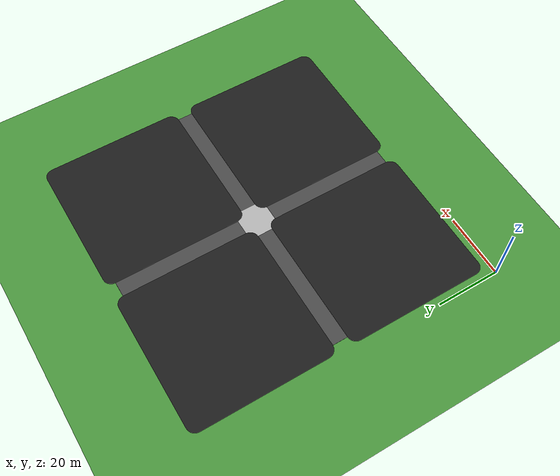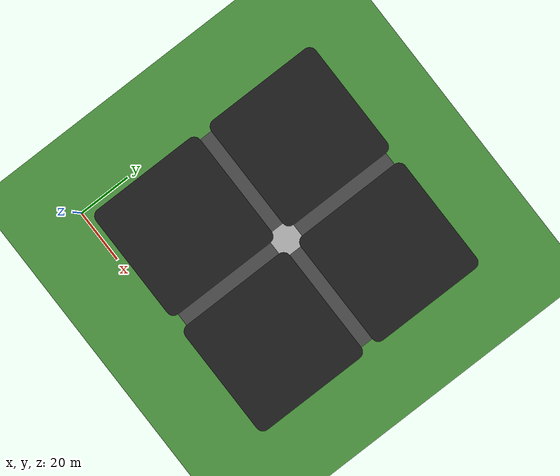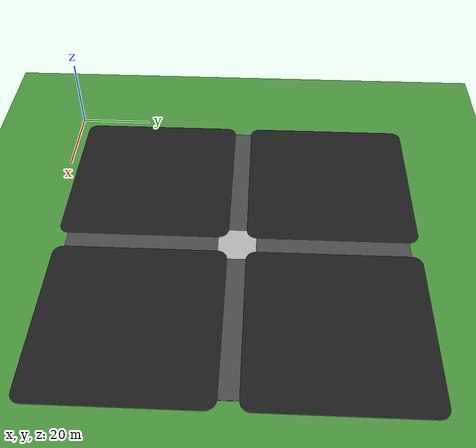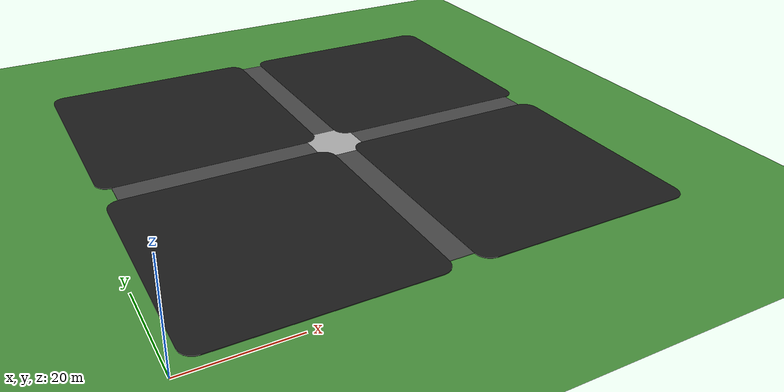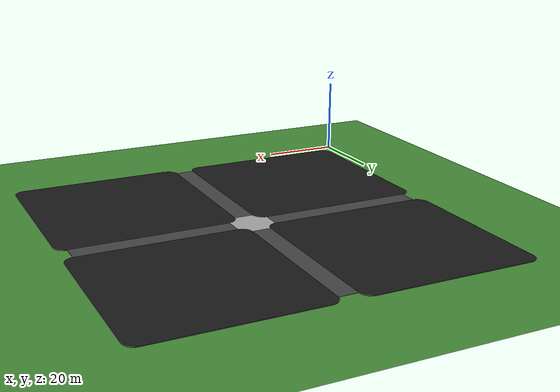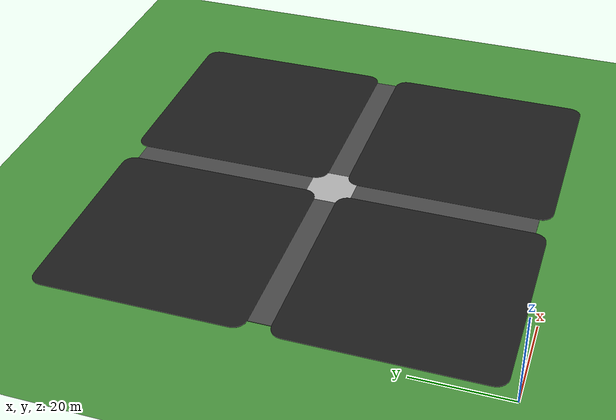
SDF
<sdf version="1.5">
 <world name="default">
  <include><uri>model://sun</uri></include>
  <scene><sky><clouds><speed>5</speed></clouds></sky></scene>
  <model name="ground_plane">
   <static>1</static>
   <link name="link">
    <pose>50 50 0 0 0 0</pose>
    <collision name="collision">
     <geometry><plane><normal>0 0 1</normal><size>100 100</size></plane></geometry>
    </collision>
    <visual name="visual">
     <cast_shadows>0</cast_shadows>
     <geometry><plane><normal>0 0 1</normal><size>100 100</size></plane></geometry>
     <material>
      <script><uri>file://media/materials/scripts/gazebo.material</uri><name>Gazebo/Grass</name></script>
     </material>
    </visual>
   </link>
  </model>
  <model name="asphalt_plane_0_0">
   <pose>25 25 0 0 0 0</pose>
   <static>true</static>
   <link name="link">
    <collision name="collision">
     <geometry><mesh><uri>models/asphalt_plane/blockbevel.dae</uri><scale>.565 .565 0.2</scale></mesh></geometry>
    </collision>
    <visual name="visual">
     <cast_shadows>false</cast_shadows>
     <geometry><mesh><uri>models/asphalt_plane/blockbevel.dae</uri><scale>.565 .565 0.2</scale></mesh></geometry>
     <material>
      <script>
       <uri>models/asphalt_plane/materials/scripts</uri>
       <uri>models/asphalt_plane/materials/textures</uri>
       <name>Gazebo/FlatBlack</name>
      </script>
     </material>
    </visual>
   </link>
  </model>
  <model name="asphalt_plane_1_0">
   <pose>75 25 0 0 0 0</pose>
   <static>true</static>
   <link name="link">
    <collision name="collision">
     <geometry><mesh><uri>models/asphalt_plane/blockbevel.dae</uri><scale>.565 .565 0.2</scale></mesh></geometry>
    </collision>
    <visual name="visual">
     <cast_shadows>false</cast_shadows>
     <geometry><mesh><uri>models/asphalt_plane/blockbevel.dae</uri><scale>.565 .565 0.2</scale></mesh></geometry>
     <material>
      <script>
       <uri>models/asphalt_plane/materials/scripts</uri>
       <uri>models/asphalt_plane/materials/textures</uri>
       <name>Gazebo/FlatBlack</name>
      </script>
     </material>
    </visual>
   </link>
  </model>
  <model name="asphalt_plane_0_1">
   <pose>25 75 0 0 0 0</pose>
   <static>true</static>
   <link name="link">
    <collision name="collision">
     <geometry><mesh><uri>models/asphalt_plane/blockbevel.dae</uri><scale>.565 .565 0.2</scale></mesh></geometry>
    </collision>
    <visual name="visual">
     <cast_shadows>false</cast_shadows>
     <geometry><mesh><uri>models/asphalt_plane/blockbevel.dae</uri><scale>.565 .565 0.2</scale></mesh></geometry>
     <material>
      <script>
       <uri>models/asphalt_plane/materials/scripts</uri>
       <uri>models/asphalt_plane/materials/textures</uri>
       <name>Gazebo/FlatBlack</name>
      </script>
     </material>
    </visual>
   </link>
  </model>
  <model name="asphalt_plane_1_1">
   <pose>75 75 0 0 0 0</pose>
   <static>true</static>
   <link name="link">
    <collision name="collision">
     <geometry><mesh><uri>models/asphalt_plane/blockbevel.dae</uri><scale>.565 .565 0.2</scale></mesh></geometry>
    </collision>
    <visual name="visual">
     <cast_shadows>false</cast_shadows>
     <geometry><mesh><uri>models/asphalt_plane/blockbevel.dae</uri><scale>.565 .565 0.2</scale></mesh></geometry>
     <material>
      <script>
       <uri>models/asphalt_plane/materials/scripts</uri>
       <uri>models/asphalt_plane/materials/textures</uri>
       <name>Gazebo/FlatBlack</name>
      </script>
     </material>
    </visual>
   </link>
  </model>
  <model name="road_1_1_0">
   <pose>50 25 0 0 0 1.5707</pose>
   <static>true</static>
   <link name="link">
    <collision name="collision"><geometry><box><size>40 5 .1</size></box></geometry></collision>
    <visual name="visual">
     <cast_shadows>false</cast_shadows>
     <geometry><box><size>40 5 .1</size></box></geometry>
     <material>
      <script>
       <uri>models/comps_road/materials/scripts</uri>
       <uri>models/comps_road/materials/textures</uri>
       <name>comps_road</name>
      </script>
     </material>
    </visual>
   </link>
  </model>
  <model name="road_2_0_1">
   <pose>25 50 0 0 0 0</pose>
   <static>true</static>
   <link name="link">
    <collision name="collision"><geometry><box><size>40 5 .1</size></box></geometry></collision>
    <visual name="visual">
     <cast_shadows>false</cast_shadows>
     <geometry><box><size>40 5 .1</size></box></geometry>
     <material>
      <script>
       <uri>models/comps_road/materials/scripts</uri>
       <uri>models/comps_road/materials/textures</uri>
       <name>comps_road</name>
      </script>
     </material>
    </visual>
   </link>
  </model>
  <model name="road_1_1_1">
   <pose>50 75 0 0 0 1.5707</pose>
   <static>true</static>
   <link name="link">
    <collision name="collision"><geometry><box><size>40 5 .1</size></box></geometry></collision>
    <visual name="visual">
     <cast_shadows>false</cast_shadows>
     <geometry><box><size>40 5 .1</size></box></geometry>
     <material>
      <script>
       <uri>models/comps_road/materials/scripts</uri>
       <uri>models/comps_road/materials/textures</uri>
       <name>comps_road</name>
      </script>
     </material>
    </visual>
   </link>
  </model>
  <model name="road_2_1_1">
   <pose>75 50 0 0 0 0</pose>
   <static>true</static>
   <link name="link">
    <collision name="collision"><geometry><box><size>40 5 .1</size></box></geometry></collision>
    <visual name="visual">
     <cast_shadows>false</cast_shadows>
     <geometry><box><size>40 5 .1</size></box></geometry>
     <material>
      <script>
       <uri>models/comps_road/materials/scripts</uri>
       <uri>models/comps_road/materials/textures</uri>
       <name>comps_road</name>
      </script>
     </material>
    </visual>
   </link>
  </model>
  <model name="intersection_1_1">
   <pose>50 50 0 0 0 0</pose>
   <static>true</static>
   <link name="link">
    <collision name="collision"><geometry><box><size>10 10 .1</size></box></geometry></collision>
    <visual name="visual">
     <cast_shadows>false</cast_shadows>
     <geometry><box><size>10 10 .1</size></box></geometry>
     <material>
      <script>
       <uri>models/intersection/materials/scripts</uri>
       <uri>models/intersection/materials/textures</uri>
       <name>intersection</name>
      </script>
     </material>
    </visual>
   </link>
  </model>
 </world>
</sdf>
